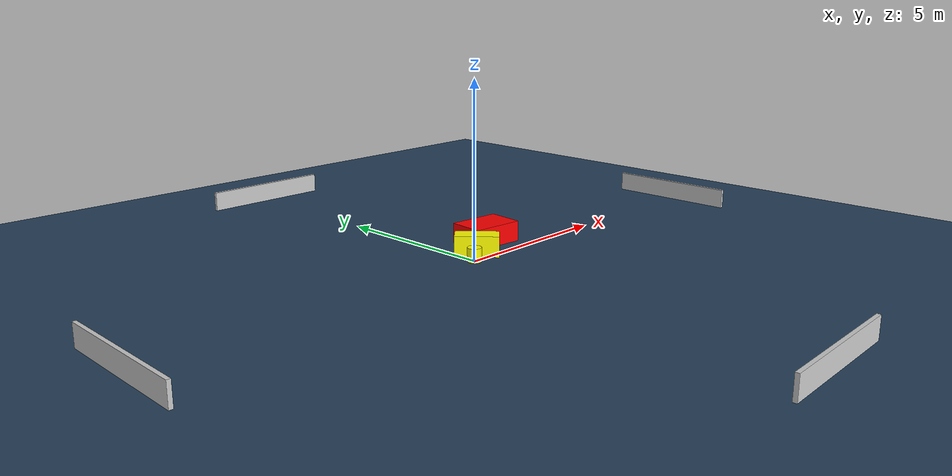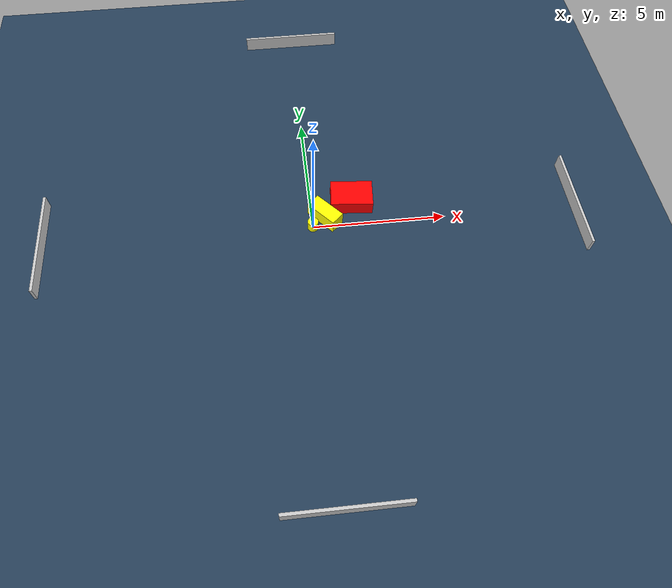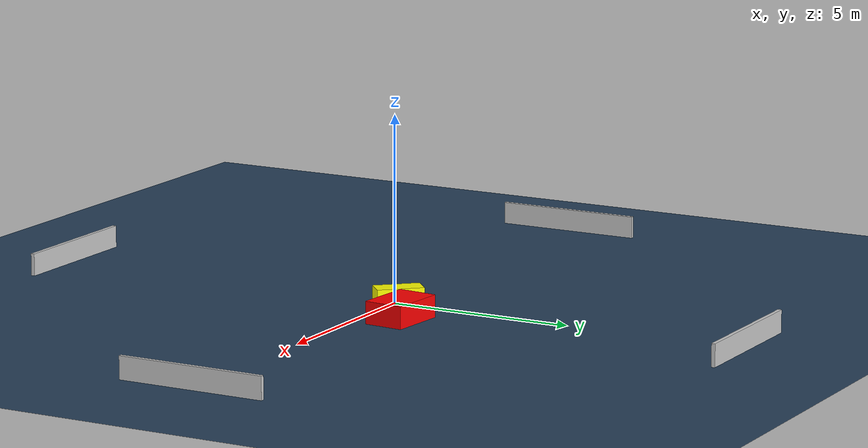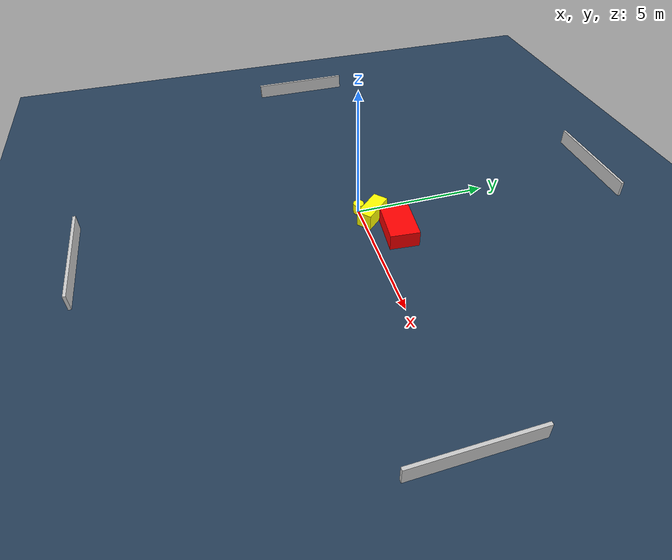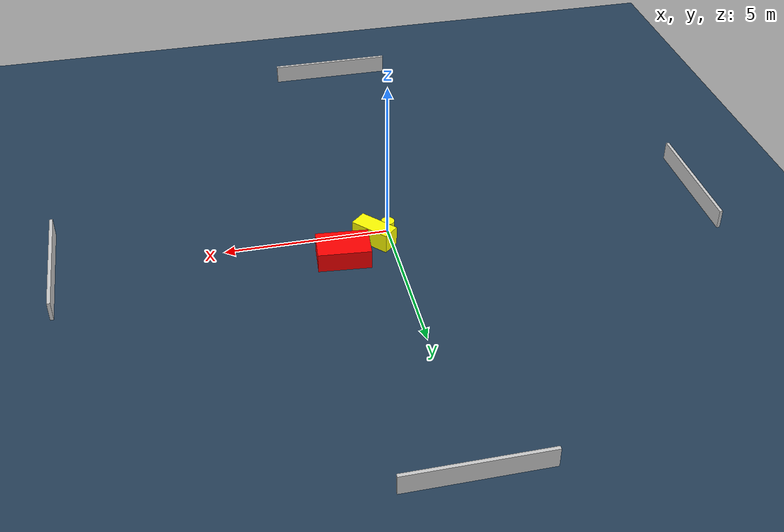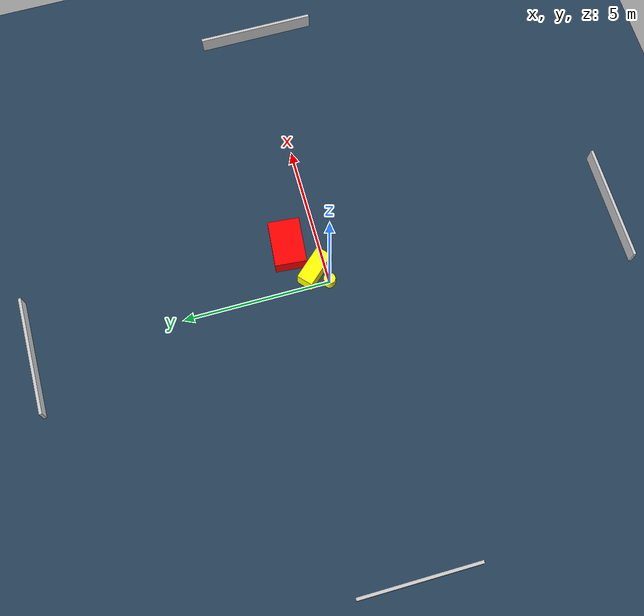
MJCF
<?xml version="1.0" ?>
<mujoco model="generated_environment">
  <option timestep="0.01" integrator="RK4" cone="elliptic"/>
  <default>
    <geom density="1"/>
  </default>
  <asset>
    <texture builtin="gradient" height="3072" name="skybox" rgb1="0.3 0.5 0.7" rgb2="0 0 0" type="skybox" width="512"/>
    <texture builtin="checker" height="300" name="groundplane" rgb1="0.2 0.3 0.4" rgb2="0.1 0.2 0.3" type="2d" width="300"/>
    <material name="groundplane" reflectance="0.2" texrepeat="5 5" texture="groundplane"/>
  </asset>
  <worldbody>
    <light dir="0 0 -1" directional="true" pos="0 0 1.5"/>
    <geom condim="3" friction="0.5 0.005 0.001" material="groundplane" name="floor" pos="0 0 0" size="0 0 0.05" type="plane"/>
    <body name="walls">
      <geom name="wall_1" condim="4" pos="-10.0 0.0 0.3" rgba="0.800000011920929 0.800000011920929 0.800000011920929 1.0" size="0.05 2.0 0.3" type="box"/>
      <geom name="wall_2" condim="4" pos="10.0 0.0 0.3" rgba="0.800000011920929 0.800000011920929 0.800000011920929 1.0" size="0.05 2.0 0.3" type="box"/>
      <geom name="wall_3" condim="4" pos="0.0 -10.0 0.3" rgba="0.800000011920929 0.800000011920929 0.800000011920929 1.0" size="2.0 0.05 0.3" type="box"/>
      <geom name="wall_4" condim="4" pos="0.0 10.0 0.3" rgba="0.800000011920929 0.800000011920929 0.800000011920929 1.0" size="2.0 0.05 0.3" type="box"/>
    </body>
    <body name="robot">
      <joint name="joint_x" type="slide" pos="0 0 0" axis="1 0 0"/>
      <joint name="joint_y" type="slide" pos="0 0 0" axis="0 1 0"/>
      <geom name="robot" type="cylinder" pos="0.0 0.0 0.2" size="0.2 0.2 0.0" mass="5.0" friction="1.0 0.005 0.0001" condim="4" rgba="1.0 1.0 0.0 1.0"/>
    </body>
    <body name="obstacle_1_movable">
      <geom name="obstacle_1_movable" condim="4" pos="0.4982212736640492 0.38029355482403776 0.3" euler="0 0 312.4165911388173" friction="0.0 0.005 0.001" rgba="1.0 1.0 0.0 1.0" size="0.6256758984698119 0.28035352120063484 0.3" type="box" mass="0.1"/>
      <joint type="free"/>
    </body>
    <body name="obstacle_2_static">
      <geom name="obstacle_2_static" condim="4" pos="1.5745483801573215 1.0397659289093613 0.3" euler="0 0 355.0002543390877" friction="0.0 0.005 0.001" rgba="1.0 0.0 0.0 1.0" size="0.7924652364187657 0.5359400926437007 0.3" type="box"/>
    </body>
  </worldbody>
  <actuator>
    <motor name="actuator_x" joint="joint_x" gear="1" ctrlrange="-1 1"/>
    <motor name="actuator_y" joint="joint_y" gear="1" ctrlrange="-1 1"/>
  </actuator>
</mujoco>
